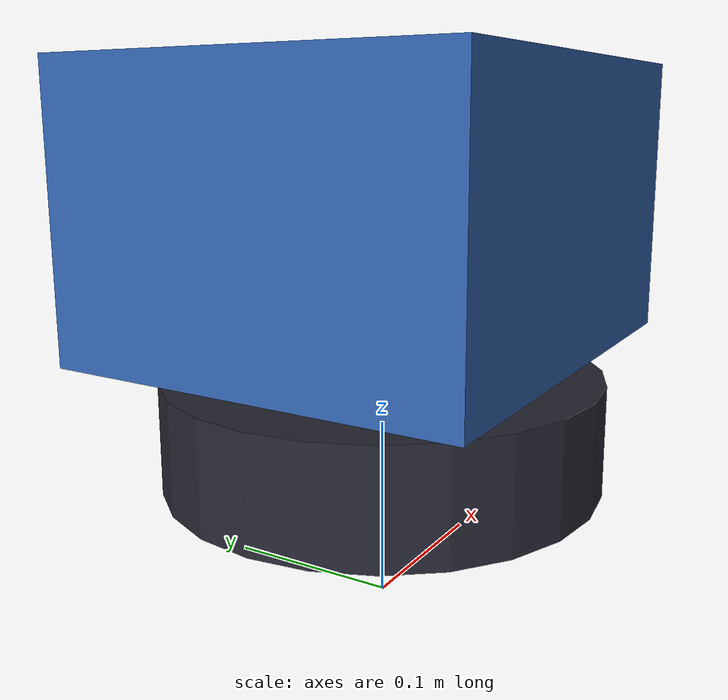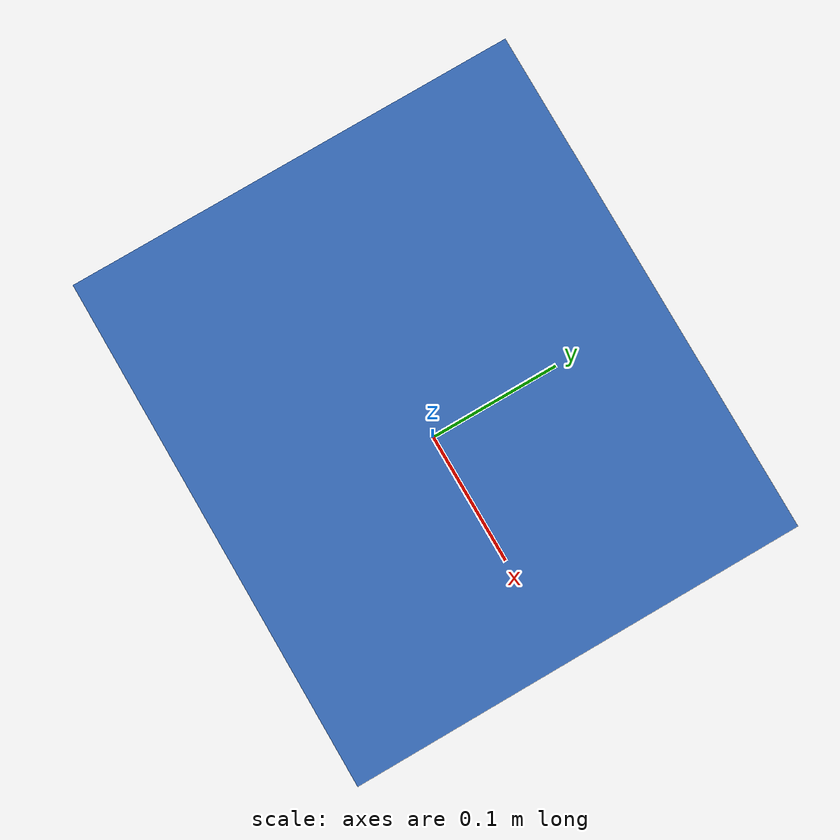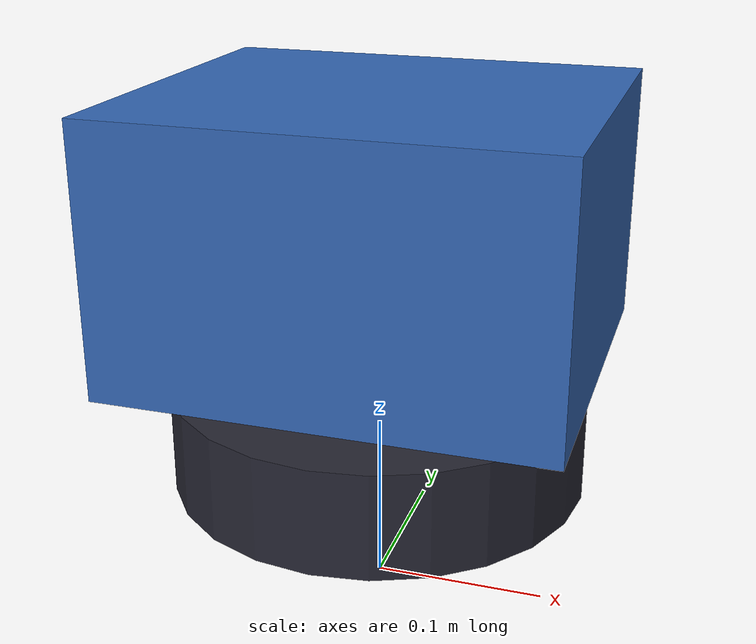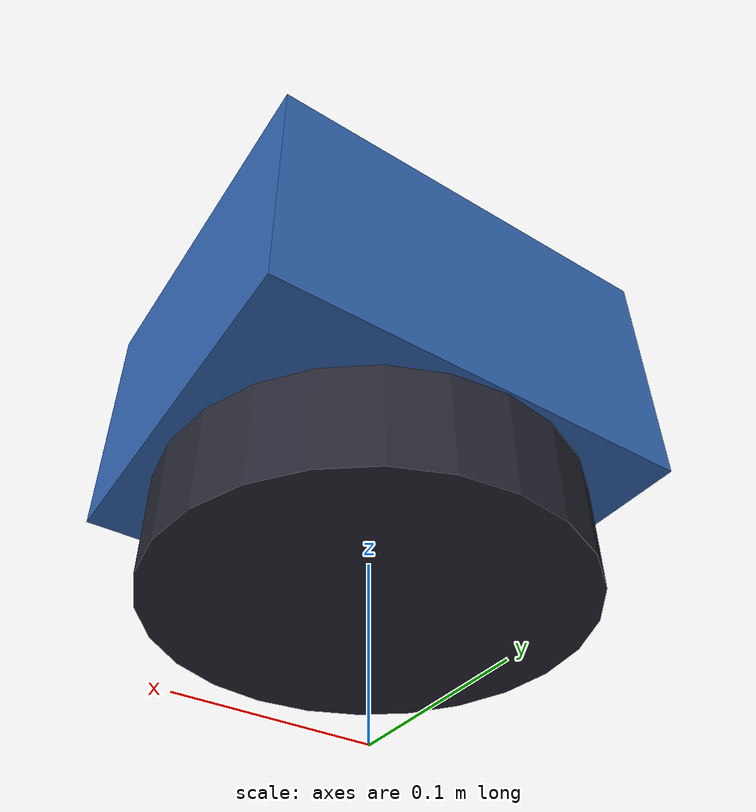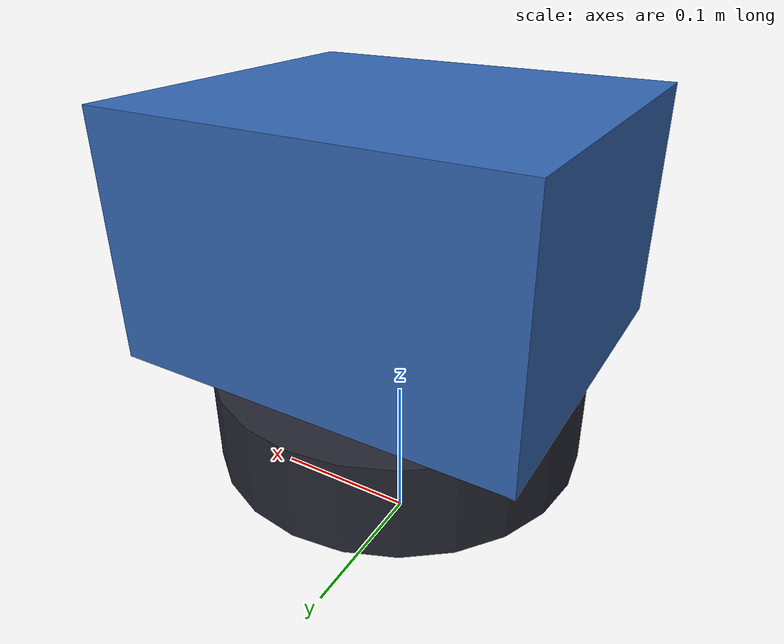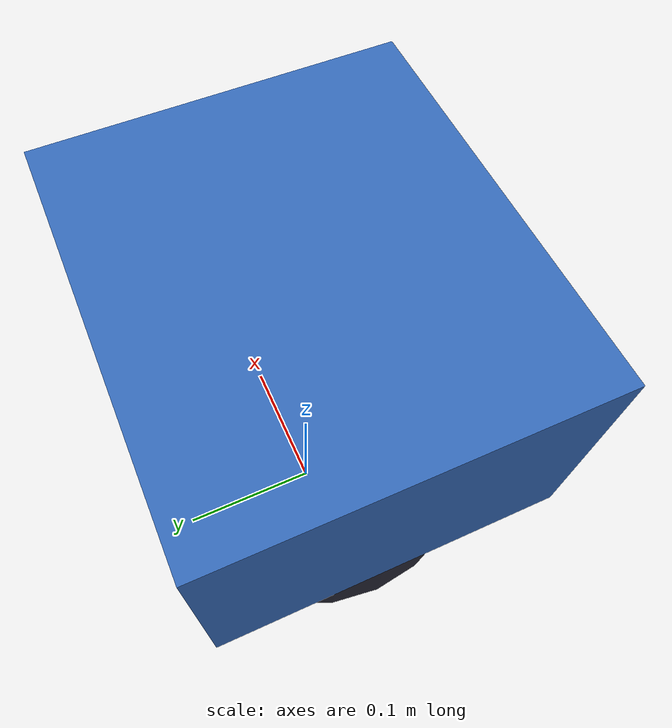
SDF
<?xml version="1.0"?>
<sdf version="1.6">
  <model name="turtlebot3_burger">
    <static>false</static>
    <pose>0 0 0.1 0 0 0</pose>

    <link name="base_link">
      <inertial>
        <mass>4.0</mass>
        <inertia>
          <ixx>0.02</ixx>
          <iyy>0.02</iyy>
          <izz>0.04</izz>
        </inertia>
      </inertial>
      <collision name="collision">
        <geometry>
          <cylinder>
            <radius>0.12</radius>
            <length>0.06</length>
          </cylinder>
        </geometry>
      </collision>
      <visual name="visual">
        <geometry>
          <cylinder>
            <radius>0.12</radius>
            <length>0.06</length>
          </cylinder>
        </geometry>
        <material>
          <ambient>0.15 0.15 0.2 1</ambient>
          <diffuse>0.15 0.15 0.2 1</diffuse>
        </material>
      </visual>
    </link>

    <link name="body_link">
      <pose>0 0 0.12 0 0 0</pose>
      <collision name="collision">
        <geometry>
          <box>
            <size>0.25 0.22 0.15</size>
          </box>
        </geometry>
      </collision>
      <visual name="visual">
        <geometry>
          <box>
            <size>0.25 0.22 0.15</size>
          </box>
        </geometry>
        <material>
          <ambient>0.2 0.4 0.7 1</ambient>
          <diffuse>0.2 0.4 0.7 1</diffuse>
        </material>
      </visual>
    </link>

    <link name="camera_link">
      <pose>0.15 0 0.25 0 0 0</pose>
      <sensor name="camera" type="camera">
        <pose>0 0 0 0 0 0</pose>
        <camera>
          <horizontal_fov>1.047</horizontal_fov>
          <image>
            <width>640</width>
            <height>480</height>
            <format>R8G8B8</format>
          </image>
          <clip>
            <near>0.1</near>
            <far>50</far>
          </clip>
        </camera>
        <always_on>true</always_on>
        <update_rate>20</update_rate>
        <topic>/camera</topic>
      </sensor>
    </link>

    <joint name="body_joint" type="fixed">
      <parent>base_link</parent>
      <child>body_link</child>
    </joint>

    <joint name="camera_joint" type="fixed">
      <parent>base_link</parent>
      <child>camera_link</child>
    </joint>
  </model>
</sdf>
